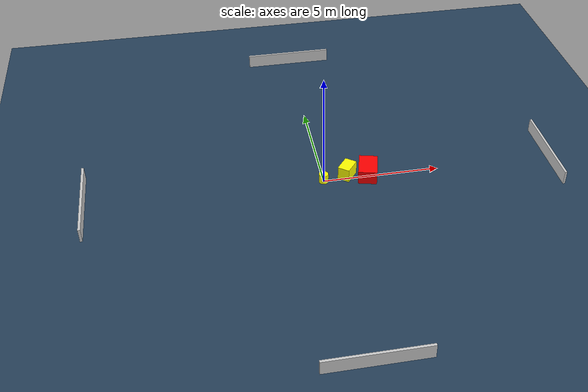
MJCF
<?xml version="1.0" ?>
<mujoco model="generated_environment">
  <option timestep="0.01" integrator="RK4" cone="elliptic"/>
  <default>
    <geom density="1"/>
  </default>
  <asset>
    <texture builtin="gradient" height="3072" name="skybox" rgb1="0.3 0.5 0.7" rgb2="0 0 0" type="skybox" width="512"/>
    <texture builtin="checker" height="300" name="groundplane" rgb1="0.2 0.3 0.4" rgb2="0.1 0.2 0.3" type="2d" width="300"/>
    <material name="groundplane" reflectance="0.2" texrepeat="5 5" texture="groundplane"/>
  </asset>
  <worldbody>
    <light dir="0 0 -1" directional="true" pos="0 0 1.5"/>
    <geom condim="3" friction="0.5 0.005 0.001" material="groundplane" name="floor" pos="0 0 0" size="0 0 0.05" type="plane"/>
    <body name="walls">
      <geom name="wall_1" condim="4" pos="-10.0 0.0 0.3" rgba="0.800000011920929 0.800000011920929 0.800000011920929 1.0" size="0.05 2.0 0.3" type="box"/>
      <geom name="wall_2" condim="4" pos="10.0 0.0 0.3" rgba="0.800000011920929 0.800000011920929 0.800000011920929 1.0" size="0.05 2.0 0.3" type="box"/>
      <geom name="wall_3" condim="4" pos="0.0 -10.0 0.3" rgba="0.800000011920929 0.800000011920929 0.800000011920929 1.0" size="2.0 0.05 0.3" type="box"/>
      <geom name="wall_4" condim="4" pos="0.0 10.0 0.3" rgba="0.800000011920929 0.800000011920929 0.800000011920929 1.0" size="2.0 0.05 0.3" type="box"/>
    </body>
    <body name="robot">
      <joint name="joint_x" type="slide" pos="0 0 0" axis="1 0 0"/>
      <joint name="joint_y" type="slide" pos="0 0 0" axis="0 1 0"/>
      <geom name="robot" type="cylinder" pos="0.0 0.0 0.2" size="0.2 0.2 0.0" mass="5.0" friction="1.0 0.005 0.0001" condim="4" rgba="1.0 1.0 0.0 1.0"/>
    </body>
    <body name="obstacle_1_movable">
      <geom name="obstacle_1_movable" condim="4" pos="1.060532055063996 0.20442349910463947 0.3" euler="0 0 142.53102378205634" friction="0.0 0.005 0.001" rgba="1.0 1.0 0.0 1.0" size="0.25856702834738293 0.37482790279209444 0.3" type="box" mass="0.1"/>
      <joint type="free"/>
    </body>
    <body name="obstacle_2_static">
      <geom name="obstacle_2_static" condim="4" pos="1.9410704618060055 0.07945313725953496 0.3" euler="0 0 75.6786267301291" friction="0.0 0.005 0.001" rgba="1.0 0.0 0.0 1.0" size="0.5935360108180672 0.40019632144050554 0.3" type="box"/>
    </body>
  </worldbody>
  <actuator>
    <motor name="actuator_x" joint="joint_x" gear="1" ctrlrange="-1 1"/>
    <motor name="actuator_y" joint="joint_y" gear="1" ctrlrange="-1 1"/>
  </actuator>
</mujoco>
